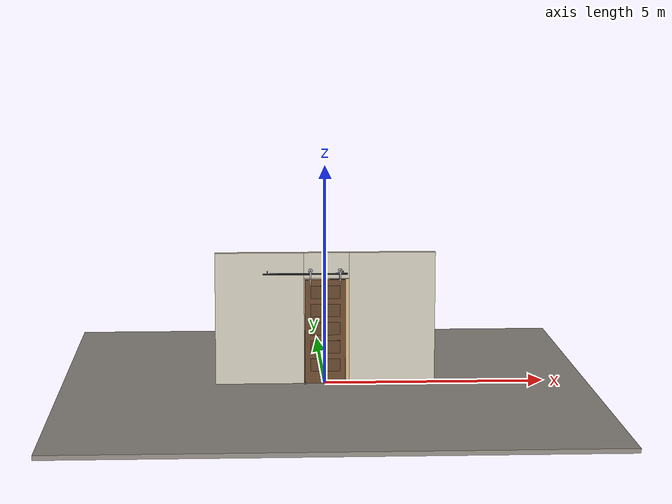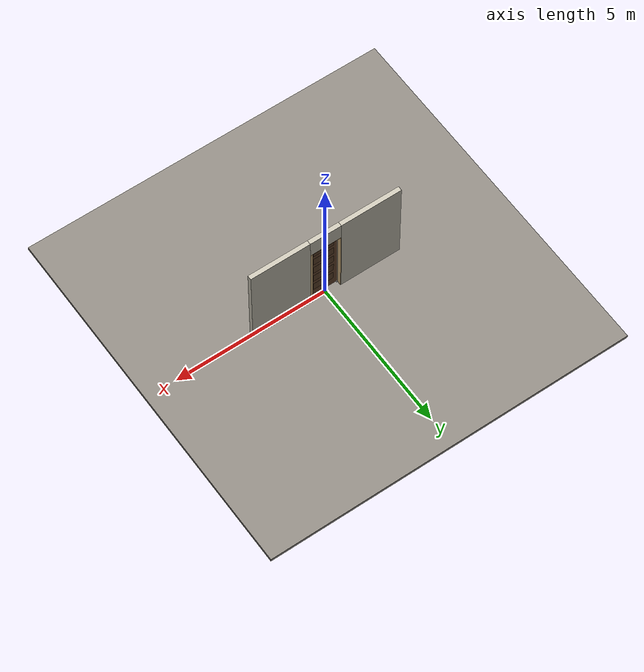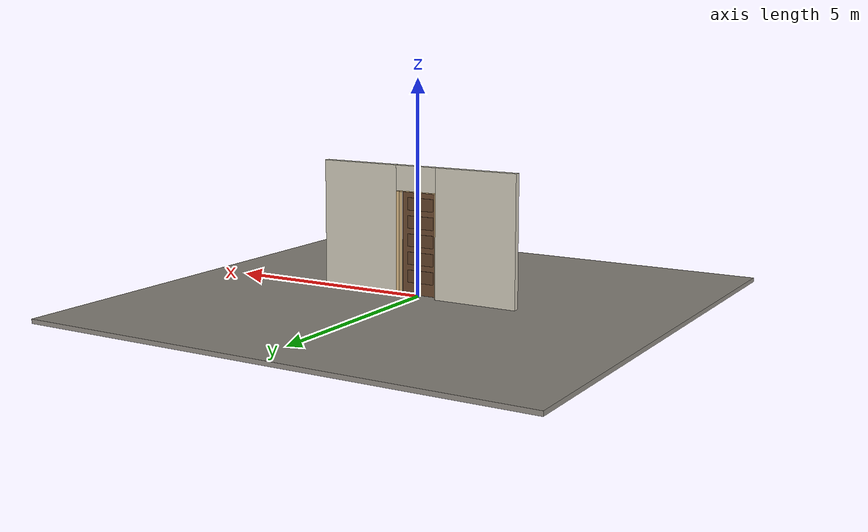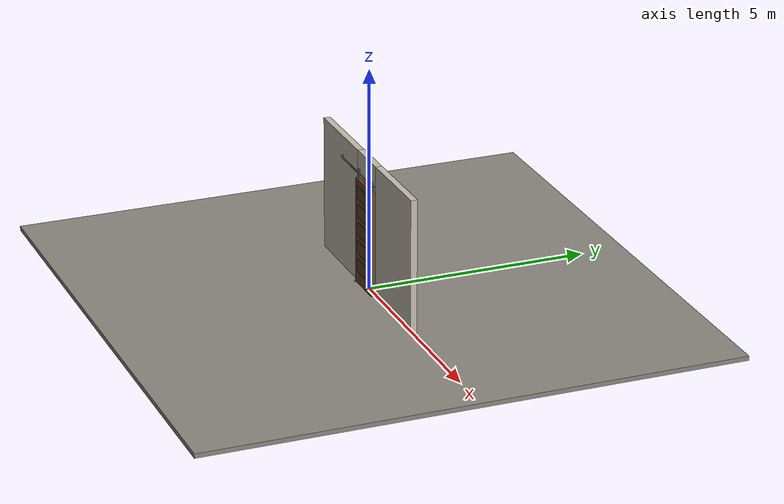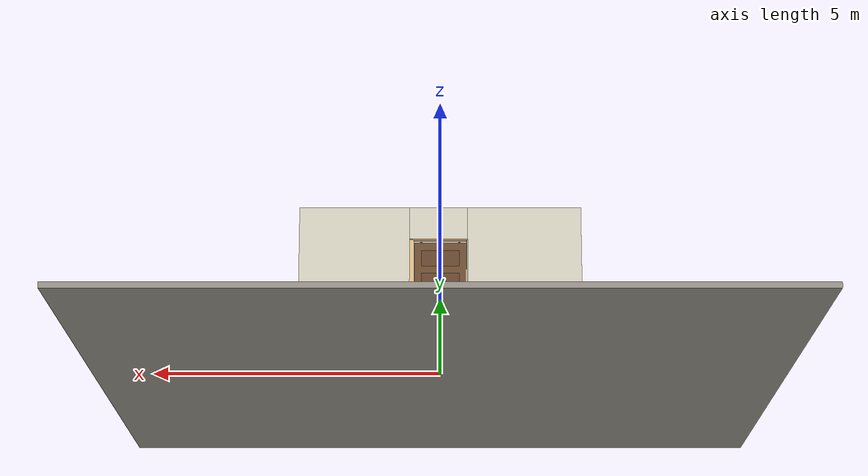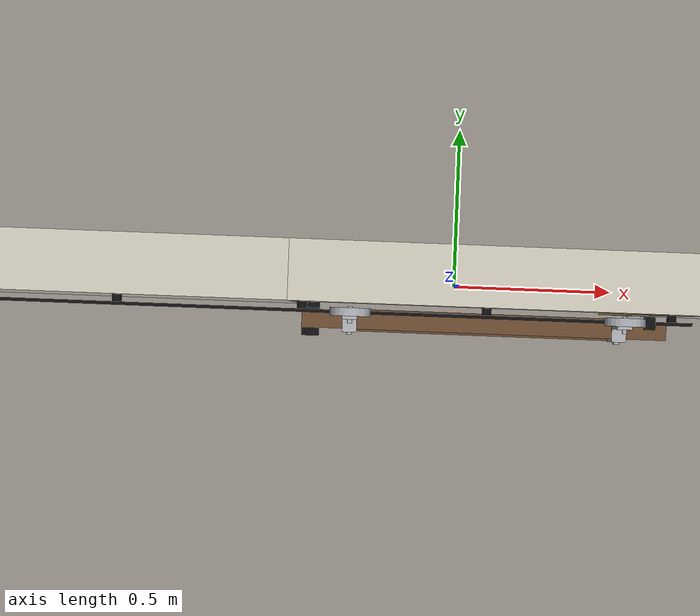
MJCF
<?xml version="1.0" ?>
<mujoco model="db0961_sliding_single_full">
  <compiler angle="radian" meshdir="../../hardware" texturedir="../../textures" autolimits="true" inertiafromgeom="false"/>
  <option timestep="0.002" integrator="implicitfast" cone="elliptic" impratio="10" noslip_iterations="3">
    <flag multiccd="enable"/>
  </option>
  <size memory="16M"/>
  <default>
    <geom condim="4" solref="0.005 1" solimp="0.95 0.99 0.001"/>
    <joint solreflimit="0.005 1" solimplimit="0.95 0.99 0.001"/>
    <tendon solreflimit="0.005 1"/>
    <equality solref="0.002 1"/>
  </default>
  <visual>
    <headlight ambient="0.4 0.4 0.4" diffuse="0.7 0.7 0.7" specular="0.2 0.2 0.2"/>
    <quality shadowsize="4096"/>
    <map znear="0.01" zfar="60"/>
  </visual>
  <asset>
    <material name="mat_floor" rgba="0.55 0.53 0.5 1" specular="0.2" shininess="0.15" reflectance="0"/>
    <material name="mat_wall" rgba="0.78 0.76 0.7 1" specular="0.2" shininess="0.1" reflectance="0"/>
    <material name="mat_frame" rgba="0.82 0.7 0.5 1" specular="0.2" shininess="0.45" reflectance="0"/>
    <material name="mat_track" rgba="0.05 0.05 0.05 1" specular="0.38" shininess="0.3" reflectance="0.12"/>
    <material name="mat_leaf" rgba="0.399 0.275 0.174 1" specular="0.2" shininess="0.5" reflectance="0"/>
    <material name="mat_leaf_panel" rgba="0.367 0.253 0.16 1" specular="0.2" shininess="0.5" reflectance="0"/>
    <material name="mat_roller" rgba="0.65 0.66 0.68 1" specular="0.74" shininess="0.5" reflectance="0.36"/>
    <material name="mat_hook" rgba="0.75 0.76 0.77 1" specular="0.8" shininess="0.65" reflectance="0.4"/>
    <texture name="skybox" type="skybox" builtin="gradient" rgb1="0.6 0.7 0.85" rgb2="0.9 0.92 0.95" width="256" height="256"/>
  </asset>
  <worldbody>
    <light name="sun" pos="1.5 -2.5 4" dir="-0.3 0.5 -0.8" directional="true" diffuse="0.8 0.8 0.8" specular="0.3 0.3 0.3" castshadow="true"/>
    <light name="fill" pos="-1.5 2.5 3" dir="0.3 -0.5 -0.7" directional="true" diffuse="0.35 0.35 0.4" castshadow="false"/>
    <camera name="robot_view" pos="0 -2.89375 2.02025" xyaxes="1 0 0 0 0.26963 0.962964" fovy="52"/>
    <camera name="far_view" pos="0 2.89375 2.02025" xyaxes="-1 0 0 0 -0.26963 0.962964" fovy="52"/>
    <camera name="iso" pos="2.19925 -2.43075 2.48325" xyaxes="0.741536 0.670913 0 -0.242917 0.268487 0.932151" fovy="46"/>
    <camera name="detail_handle" pos="0.48 -0.8 1.28" xyaxes="0.97561 0.219512 0 -0.070934 0.315262 0.94635" fovy="38"/>
    <geom name="floor" type="box" size="6 6 0.05" pos="0 0 -0.05" material="mat_floor" group="0" contype="1" conaffinity="1" friction="0.8 0.005 0.0001" density="2400"/>
    <geom name="wall_left" type="box" size="1.007 0.0725 1.51" pos="-1.493 0 1.51" material="mat_wall" group="0" contype="1" conaffinity="1" friction="0.6 0.005 0.0001" density="800"/>
    <geom name="wall_right" type="box" size="0.977 0.0725 1.51" pos="1.523 0 1.51" material="mat_wall" group="0" contype="1" conaffinity="1" friction="0.6 0.005 0.0001" density="800"/>
    <geom name="wall_header" type="box" size="0.516 0.0725 0.2905" pos="0.03 0 2.7295" material="mat_wall" group="0" contype="1" conaffinity="1" friction="0.6 0.005 0.0001" density="800"/>
    <geom name="jamb_l" type="box" size="0.0095 0.0725 1.21" pos="-0.4765 0 1.21" material="mat_frame" group="0" contype="1" conaffinity="1" friction="0.6 0.005 0.0001" density="300"/>
    <geom name="jamb_head" type="box" size="0.486 0.0725 0.0095" pos="0 0 2.4295" material="mat_frame" group="0" contype="1" conaffinity="1" friction="0.6 0.005 0.0001" density="300"/>
    <geom name="flat_track" type="box" size="0.964 0.004 0.02" pos="-0.457 -0.0945 2.54" material="mat_track" group="0" contype="1" conaffinity="1" friction="0.6 0.005 0.0001" density="7850"/>
    <geom name="track_standoff_0" type="cylinder" size="0.012 0.009" pos="-1.371 -0.0815 2.54" quat="0.707107 -0.707107 0 0" material="mat_track" group="1" contype="0" conaffinity="0" density="7850"/>
    <geom name="track_standoff_1" type="cylinder" size="0.012 0.009" pos="-0.914 -0.0815 2.54" quat="0.707107 -0.707107 0 0" material="mat_track" group="1" contype="0" conaffinity="0" density="7850"/>
    <geom name="track_standoff_2" type="cylinder" size="0.012 0.009" pos="-0.457 -0.0815 2.54" quat="0.707107 -0.707107 0 0" material="mat_track" group="1" contype="0" conaffinity="0" density="7850"/>
    <geom name="track_standoff_3" type="cylinder" size="0.012 0.009" pos="0 -0.0815 2.54" quat="0.707107 -0.707107 0 0" material="mat_track" group="1" contype="0" conaffinity="0" density="7850"/>
    <geom name="track_standoff_4" type="cylinder" size="0.012 0.009" pos="0.457 -0.0815 2.54" quat="0.707107 -0.707107 0 0" material="mat_track" group="1" contype="0" conaffinity="0" density="7850"/>
    <geom name="leaf_track_stop_l" type="box" size="0.012 0.016 0.027" pos="-1.313 -0.0945 2.585" material="mat_track" group="0" contype="1" conaffinity="1" friction="0.6 0.005 0.0001" density="7850"/>
    <geom name="leaf_track_stop_r" type="box" size="0.012 0.016 0.027" pos="0.399 -0.0945 2.585" material="mat_track" group="0" contype="1" conaffinity="1" friction="0.6 0.005 0.0001" density="7850"/>
    <geom name="jamb_latch_0" type="box" size="0.0395 0.0725 1.21" pos="0.5065 0 1.21" material="mat_frame" group="0" contype="1" conaffinity="1" friction="0.6 0.005 0.0001" density="300"/>
    <geom name="floor_guide_n" type="box" size="0.028 0.004 0.009" pos="-0.457 -0.1415 0.009" material="mat_track" group="0" contype="1" conaffinity="1" friction="0.6 0.005 0.0001" density="7850"/>
    <geom name="floor_guide_n_foot" type="box" size="0.028 0.018 0.002" pos="-0.457 -0.1555 0.002" material="mat_track" group="0" contype="1" conaffinity="1" friction="0.6 0.005 0.0001" density="7850"/>
    <geom name="floor_guide_p" type="box" size="0.028 0.004 0.009" pos="-0.457 -0.0875 0.009" material="mat_track" group="0" contype="1" conaffinity="1" friction="0.6 0.005 0.0001" density="7850"/>
    <geom name="floor_guide_p_foot" type="box" size="0.028 0.018 0.002" pos="-0.457 -0.0735 0.002" material="mat_track" group="0" contype="1" conaffinity="1" friction="0.6 0.005 0.0001" density="7850"/>
    <site name="approach_point" pos="0 -1.5 0" quat="1 0 0 0" size="0.05" rgba="0.2 0.9 0.2 0.5" group="4"/>
    <site name="goal_point" pos="0 1.5 0" quat="1 0 0 0" size="0.05" rgba="0.2 0.9 0.2 0.5" group="4"/>
    <site name="door_plane_center" pos="0 0 1.21" quat="1 0 0 0" size="0.02" rgba="0.2 0.9 0.2 0.5" group="4"/>
    <body name="leaf" pos="0 -0.1145 0">
      <inertial pos="0 0.00049 1.291021" mass="68.36288" quat="0.500321 0.499679 0.499679 -0.500321" diaginertia="4.95022443 37.702586064 42.629053541"/>
      <joint name="leaf_slide" type="slide" axis="-1 0 0" limited="true" range="0 0.914" damping="5.418144" frictionloss="80.4493" armature="0.5"/>
      <geom name="leaf_slab" type="box" size="0.457 0.022 1.2" pos="0 0 1.212" material="mat_leaf" group="0" contype="1" conaffinity="1" friction="0.4 0.005 0.0001" density="1"/>
      <geom name="leaf_panel_0_n" type="box" size="0.33646 0.003 0.1456" pos="0 -0.025 0.4416" material="mat_leaf_panel" group="1" contype="0" conaffinity="0" density="1"/>
      <geom name="leaf_panel_0_p" type="box" size="0.33646 0.003 0.1456" pos="0 0.025 0.4416" material="mat_leaf_panel" group="1" contype="0" conaffinity="0" density="1"/>
      <geom name="leaf_panel_1_n" type="box" size="0.33646 0.003 0.1456" pos="0 -0.025 0.8628" material="mat_leaf_panel" group="1" contype="0" conaffinity="0" density="1"/>
      <geom name="leaf_panel_1_p" type="box" size="0.33646 0.003 0.1456" pos="0 0.025 0.8628" material="mat_leaf_panel" group="1" contype="0" conaffinity="0" density="1"/>
      <geom name="leaf_panel_2_n" type="box" size="0.33646 0.003 0.1456" pos="0 -0.025 1.284" material="mat_leaf_panel" group="1" contype="0" conaffinity="0" density="1"/>
      <geom name="leaf_panel_2_p" type="box" size="0.33646 0.003 0.1456" pos="0 0.025 1.284" material="mat_leaf_panel" group="1" contype="0" conaffinity="0" density="1"/>
      <geom name="leaf_panel_3_n" type="box" size="0.33646 0.003 0.1456" pos="0 -0.025 1.7052" material="mat_leaf_panel" group="1" contype="0" conaffinity="0" density="1"/>
      <geom name="leaf_panel_3_p" type="box" size="0.33646 0.003 0.1456" pos="0 0.025 1.7052" material="mat_leaf_panel" group="1" contype="0" conaffinity="0" density="1"/>
      <geom name="leaf_panel_4_n" type="box" size="0.33646 0.003 0.1456" pos="0 -0.025 2.1264" material="mat_leaf_panel" group="1" contype="0" conaffinity="0" density="1"/>
      <geom name="leaf_panel_4_p" type="box" size="0.33646 0.003 0.1456" pos="0 0.025 2.1264" material="mat_leaf_panel" group="1" contype="0" conaffinity="0" density="1"/>
      <geom name="leaf_hanger_wheel_0" type="cylinder" size="0.05 0.01" pos="-0.337 0.02 2.61" quat="0.707107 -0.707107 0 0" material="mat_roller" group="1" contype="0" conaffinity="0" density="7850"/>
      <geom name="leaf_hanger_mount_0" type="box" size="0.018 0.004 0.0725" pos="-0.337 -0.026 2.3645" material="mat_roller" group="1" contype="0" conaffinity="0" density="7850"/>
      <geom name="leaf_hanger_strap_0" type="box" size="0.018 0.004 0.0925" pos="-0.337 0.006 2.5295" material="mat_roller" group="1" contype="0" conaffinity="0" density="7850"/>
      <geom name="leaf_hanger_bend_0" type="box" size="0.018 0.02 0.004" pos="-0.337 -0.01 2.437" material="mat_roller" group="1" contype="0" conaffinity="0" density="7850"/>
      <geom name="leaf_hanger_axle_0" type="cylinder" size="0.006 0.021" pos="-0.337 0.013 2.61" quat="0.707107 -0.707107 0 0" material="mat_roller" group="1" contype="0" conaffinity="0" density="7850"/>
      <geom name="leaf_hanger_bolt_0_90" type="cylinder" size="0.007 0.004" pos="-0.337 -0.032 2.322" quat="0.707107 -0.707107 0 0" material="mat_roller" group="1" contype="0" conaffinity="0" density="7850"/>
      <geom name="leaf_hanger_bolt_0_45" type="cylinder" size="0.007 0.004" pos="-0.337 -0.032 2.367" quat="0.707107 -0.707107 0 0" material="mat_roller" group="1" contype="0" conaffinity="0" density="7850"/>
      <geom name="leaf_hanger_wheel_1" type="cylinder" size="0.05 0.01" pos="0.337 0.02 2.61" quat="0.707107 -0.707107 0 0" material="mat_roller" group="1" contype="0" conaffinity="0" density="7850"/>
      <geom name="leaf_hanger_mount_1" type="box" size="0.018 0.004 0.0725" pos="0.337 -0.026 2.3645" material="mat_roller" group="1" contype="0" conaffinity="0" density="7850"/>
      <geom name="leaf_hanger_strap_1" type="box" size="0.018 0.004 0.0925" pos="0.337 0.006 2.5295" material="mat_roller" group="1" contype="0" conaffinity="0" density="7850"/>
      <geom name="leaf_hanger_bend_1" type="box" size="0.018 0.02 0.004" pos="0.337 -0.01 2.437" material="mat_roller" group="1" contype="0" conaffinity="0" density="7850"/>
      <geom name="leaf_hanger_axle_1" type="cylinder" size="0.006 0.021" pos="0.337 0.013 2.61" quat="0.707107 -0.707107 0 0" material="mat_roller" group="1" contype="0" conaffinity="0" density="7850"/>
      <geom name="leaf_hanger_bolt_1_90" type="cylinder" size="0.007 0.004" pos="0.337 -0.032 2.322" quat="0.707107 -0.707107 0 0" material="mat_roller" group="1" contype="0" conaffinity="0" density="7850"/>
      <geom name="leaf_hanger_bolt_1_45" type="cylinder" size="0.007 0.004" pos="0.337 -0.032 2.367" quat="0.707107 -0.707107 0 0" material="mat_roller" group="1" contype="0" conaffinity="0" density="7850"/>
      <site name="leaf_edge_mid" pos="0.457 0 1.212" quat="1 0 0 0" size="0.02" rgba="0.2 0.9 0.2 0.5" group="4"/>
    </body>
  </worldbody>
  <sensor>
    <jointpos name="leaf_slide_pos" joint="leaf_slide"/>
    <jointvel name="leaf_slide_vel" joint="leaf_slide"/>
  </sensor>
</mujoco>
